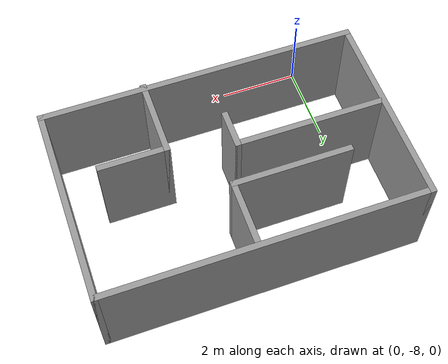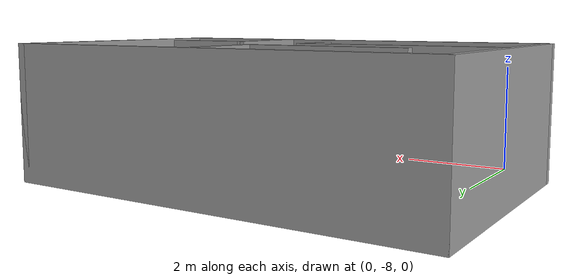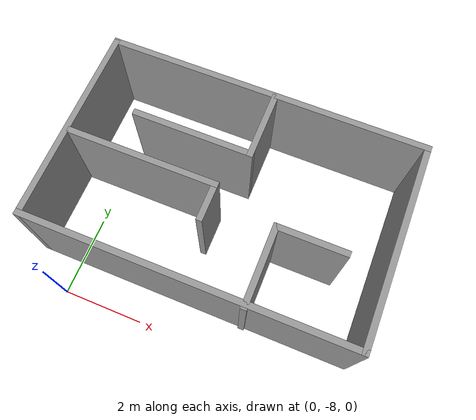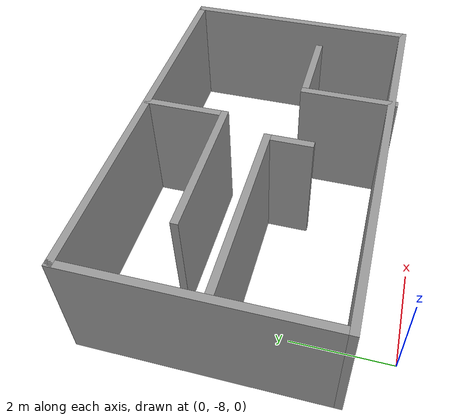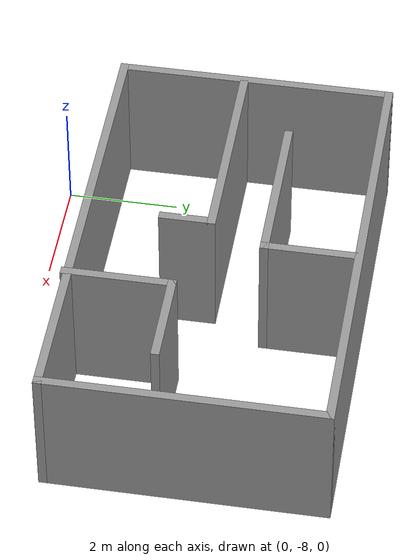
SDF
<?xml version='1.0'?>
<sdf version='1.7'>
  <model name='room'>
    <pose>2.965 -3.6125 0 0 -0 0</pose>
    <link name='Wall_0'>
      <collision name='Wall_0_Collision'>
        <geometry>
          <box>
            <size>8 0.15 2.5</size>
          </box>
        </geometry>
        <pose>0 0 1.25 0 -0 0</pose>
      </collision>
      <visual name='Wall_0_Visual'>
        <pose>0 0 1.25 0 -0 0</pose>
        <geometry>
          <box>
            <size>8 0.15 2.5</size>
          </box>
        </geometry>
        <material>
          <script>
            <uri>file://media/materials/scripts/gazebo.material</uri>
            <name>Gazebo/Grey</name>
          </script>
          <ambient>1 1 1 1</ambient>
        </material>
        <meta>
          <layer>0</layer>
        </meta>
      </visual>
      <pose>0 1.3625 0 0 -0 0</pose>
    </link>
    <link name='Wall_1'>
      <collision name='Wall_1_Collision'>
        <geometry>
          <box>
            <size>5 0.15 2.5</size>
          </box>
        </geometry>
        <pose>0 0 1.25 0 -0 0</pose>
      </collision>
      <visual name='Wall_1_Visual'>
        <pose>0 0 1.25 0 -0 0</pose>
        <geometry>
          <box>
            <size>5 0.15 2.5</size>
          </box>
        </geometry>
        <material>
          <script>
            <uri>file://media/materials/scripts/gazebo.material</uri>
            <name>Gazebo/Grey</name>
          </script>
          <ambient>1 1 1 1</ambient>
        </material>
        <meta>
          <layer>0</layer>
        </meta>
      </visual>
      <pose>3.925 -1.0625 0 0 -0 -1.5708</pose>
    </link>
    <link name='Wall_11'>
      <collision name='Wall_11_Collision'>
        <geometry>
          <box>
            <size>2 0.15 2.5</size>
          </box>
        </geometry>
        <pose>0 0 1.25 0 -0 0</pose>
      </collision>
      <visual name='Wall_11_Visual'>
        <pose>0 0 1.25 0 -0 0</pose>
        <geometry>
          <box>
            <size>2 0.15 2.5</size>
          </box>
        </geometry>
        <material>
          <script>
            <uri>file://media/materials/scripts/gazebo.material</uri>
            <name>Gazebo/Grey</name>
          </script>
          <ambient>1 1 1 1</ambient>
        </material>
        <meta>
          <layer>0</layer>
        </meta>
      </visual>
      <pose>1.375 -2.6125 0 0 -0 1.5708</pose>
    </link>
    <link name='Wall_12'>
      <collision name='Wall_12_Collision'>
        <geometry>
          <box>
            <size>1.75 0.15 2.5</size>
          </box>
        </geometry>
        <pose>0 0 1.25 0 -0 0</pose>
      </collision>
      <visual name='Wall_12_Visual'>
        <pose>0 0 1.25 0 -0 0</pose>
        <geometry>
          <box>
            <size>1.75 0.15 2.5</size>
          </box>
        </geometry>
        <material>
          <script>
            <uri>file://media/materials/scripts/gazebo.material</uri>
            <name>Gazebo/Grey</name>
          </script>
          <ambient>1 1 1 1</ambient>
        </material>
        <meta>
          <layer>0</layer>
        </meta>
      </visual>
      <pose>2.175 -1.6875 0 0 -0 0</pose>
    </link>
    <link name='Wall_2'>
      <collision name='Wall_2_Collision'>
        <geometry>
          <box>
            <size>8 0.15 2.5</size>
          </box>
        </geometry>
        <pose>0 0 1.25 0 -0 0</pose>
      </collision>
      <visual name='Wall_2_Visual'>
        <pose>0 0 1.25 0 -0 0</pose>
        <geometry>
          <box>
            <size>8 0.15 2.5</size>
          </box>
        </geometry>
        <material>
          <script>
            <uri>file://media/materials/scripts/gazebo.material</uri>
            <name>Gazebo/Grey</name>
          </script>
          <ambient>1 1 1 1</ambient>
        </material>
        <meta>
          <layer>0</layer>
        </meta>
      </visual>
      <pose>0 -3.4875 0 0 -0 3.14159</pose>
    </link>
    <link name='Wall_3'>
      <collision name='Wall_3_Collision'>
        <geometry>
          <box>
            <size>5 0.15 2.5</size>
          </box>
        </geometry>
        <pose>0 0 1.25 0 -0 0</pose>
      </collision>
      <visual name='Wall_3_Visual'>
        <pose>0 0 1.25 0 -0 0</pose>
        <geometry>
          <box>
            <size>5 0.15 2.5</size>
          </box>
        </geometry>
        <material>
          <script>
            <uri>file://media/materials/scripts/gazebo.material</uri>
            <name>Gazebo/Grey</name>
          </script>
          <ambient>1 1 1 1</ambient>
        </material>
        <meta>
          <layer>0</layer>
        </meta>
      </visual>
      <pose>-3.925 -1.0625 0 0 -0 1.5708</pose>
    </link>
    <link name='Wall_5'>
      <collision name='Wall_5_Collision'>
        <geometry>
          <box>
            <size>1.75 0.15 2.5</size>
          </box>
        </geometry>
        <pose>0 0 1.25 0 -0 0</pose>
      </collision>
      <visual name='Wall_5_Visual'>
        <pose>0 0 1.25 0 -0 0</pose>
        <geometry>
          <box>
            <size>1.75 0.15 2.5</size>
          </box>
        </geometry>
        <material>
          <script>
            <uri>file://media/materials/scripts/gazebo.material</uri>
            <name>Gazebo/Grey</name>
          </script>
          <ambient>1 1 1 1</ambient>
        </material>
        <meta>
          <layer>0</layer>
        </meta>
      </visual>
      <pose>0.235 0.5225 0 0 -0 -1.5708</pose>
    </link>
    <link name='Wall_6'>
      <collision name='Wall_6_Collision'>
        <geometry>
          <box>
            <size>3 0.15 2.5</size>
          </box>
        </geometry>
        <pose>0 0 1.25 0 -0 0</pose>
      </collision>
      <visual name='Wall_6_Visual'>
        <pose>0 0 1.25 0 -0 0</pose>
        <geometry>
          <box>
            <size>3 0.15 2.5</size>
          </box>
        </geometry>
        <material>
          <script>
            <uri>file://media/materials/scripts/gazebo.material</uri>
            <name>Gazebo/Grey</name>
          </script>
          <ambient>1 1 1 1</ambient>
        </material>
        <meta>
          <layer>0</layer>
        </meta>
      </visual>
      <pose>-1.19 -0.2775 0 0 -0 3.14159</pose>
    </link>
    <link name='Wall_8'>
      <collision name='Wall_8_Collision'>
        <geometry>
          <box>
            <size>3.75 0.15 2.5</size>
          </box>
        </geometry>
        <pose>0 0 1.25 0 -0 0</pose>
      </collision>
      <visual name='Wall_8_Visual'>
        <pose>0 0 1.25 0 -0 0</pose>
        <geometry>
          <box>
            <size>3.75 0.15 2.5</size>
          </box>
        </geometry>
        <material>
          <script>
            <uri>file://media/materials/scripts/gazebo.material</uri>
            <name>Gazebo/Grey</name>
          </script>
          <ambient>1 1 1 1</ambient>
        </material>
        <meta>
          <layer>0</layer>
        </meta>
      </visual>
      <pose>-2.015 -1.2675 0 0 -0 0</pose>
    </link>
    <link name='Wall_9'>
      <collision name='Wall_9_Collision'>
        <geometry>
          <box>
            <size>1 0.15 2.5</size>
          </box>
        </geometry>
        <pose>0 0 1.25 0 -0 0</pose>
      </collision>
      <visual name='Wall_9_Visual'>
        <pose>0 0 1.25 0 -0 0</pose>
        <geometry>
          <box>
            <size>1 0.15 2.5</size>
          </box>
        </geometry>
        <material>
          <script>
            <uri>file://media/materials/scripts/gazebo.material</uri>
            <name>Gazebo/Grey</name>
          </script>
          <ambient>1 1 1 1</ambient>
        </material>
        <meta>
          <layer>0</layer>
        </meta>
      </visual>
      <pose>-0.215 -1.6925 0 0 -0 -1.5708</pose>
    </link>
    <static>1</static>
  </model>
</sdf>
